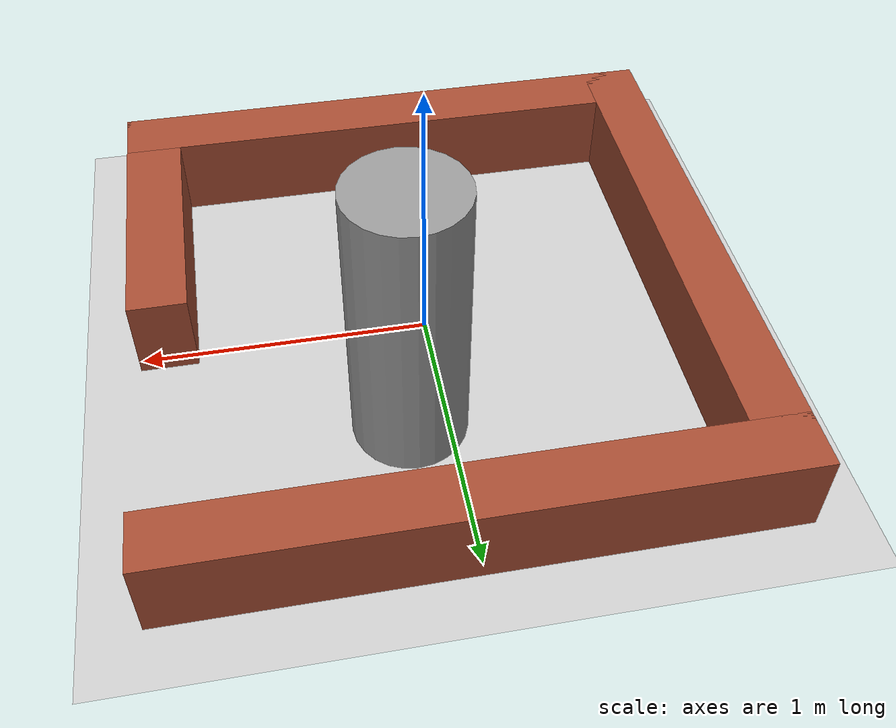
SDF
<sdf version="1.6">
 <world name="default">
  <light name="sun" type="directional">
   <pose>0 0 10 0 -0 0</pose>
   <diffuse>0.8 0.8 0.8 1</diffuse>
   <specular>0.2 0.2 0.2 1</specular>
   <attenuation>
    <range>1000</range>
    <constant>0.9</constant>
    <linear>0.01</linear>
    <quadratic>0.001</quadratic>
   </attenuation>
   <direction>-0.5 0.1 -0.9</direction>
  </light>
  <model name="ground_plane">
   <static>1</static>
   <link name="link">
    <collision name="collision">
     <geometry><plane><normal>0 0 1</normal><size>100 100</size></plane></geometry>
     <surface>
      <contact><collide_bitmask>65535</collide_bitmask></contact>
      <friction><ode><mu>100</mu><mu2>50</mu2></ode></friction>
     </surface>
    </collision>
    <visual name="visual">
     <cast_shadows>0</cast_shadows>
     <geometry><plane><normal>0 0 1</normal><size>100 100</size></plane></geometry>
     <material>
      <script><uri>file://media/materials/scripts/gazebo.material</uri><name>Gazebo/Grey</name></script>
     </material>
    </visual>
   </link>
  </model>
  <gravity>0 0 -9.8</gravity>
  <magnetic_field>6e-06 2.3e-05 -4.2e-05</magnetic_field>
  <atmosphere type="adiabatic"/>
  <physics name="default_physics" default="0" type="ode">
   <max_step_size>0.001</max_step_size>
   <real_time_factor>1</real_time_factor>
   <real_time_update_rate>1000</real_time_update_rate>
  </physics>
  <scene><ambient>0.4 0.4 0.4 1</ambient><background>0.7 0.7 0.7 1</background><shadows>1</shadows></scene>
  <audio><device>default</device></audio>
  <spherical_coordinates>
   <surface_model>EARTH_WGS84</surface_model>
   <latitude_deg>0</latitude_deg>
   <longitude_deg>0</longitude_deg>
   <elevation>0</elevation>
   <heading_deg>0</heading_deg>
  </spherical_coordinates>
  <model name="maze1">
   <pose>-0.017721 0.017165 0 0 -0 0</pose>
   <link name="Wall_0">
    <collision name="Wall_0_Collision">
     <geometry><box><size>2.05 0.2 0.3</size></box></geometry>
     <pose>0 0 0.15 0 -0 0</pose>
    </collision>
    <visual name="Wall_0_Visual">
     <pose>0 0 0.15 0 -0 0</pose>
     <geometry><box><size>2.05 0.2 0.3</size></box></geometry>
     <material>
      <script><uri>file://media/materials/scripts/gazebo.material</uri><name>Gazebo/Bricks</name></script>
      <ambient>1 1 1 1</ambient>
     </material>
     <meta><layer>0</layer></meta>
    </visual>
    <pose>0 0.925 0 0 -0 3.14159</pose>
   </link>
   <link name="Wall_1">
    <collision name="Wall_1_Collision">
     <geometry><box><size>2.05 0.2 0.3</size></box></geometry>
     <pose>0 0 0.15 0 -0 0</pose>
    </collision>
    <visual name="Wall_1_Visual">
     <pose>0 0 0.15 0 -0 0</pose>
     <geometry><box><size>2.05 0.2 0.3</size></box></geometry>
     <material>
      <script><uri>file://media/materials/scripts/gazebo.material</uri><name>Gazebo/Bricks</name></script>
      <ambient>1 1 1 1</ambient>
     </material>
     <meta><layer>0</layer></meta>
    </visual>
    <pose>-0.925 0 0 0 -0 -1.5708</pose>
   </link>
   <link name="Wall_2">
    <collision name="Wall_2_Collision">
     <geometry><box><size>2.05 0.2 0.3</size></box></geometry>
     <pose>0 0 0.15 0 -0 0</pose>
    </collision>
    <visual name="Wall_2_Visual">
     <pose>0 0 0.15 0 -0 0</pose>
     <geometry><box><size>2.05 0.2 0.3</size></box></geometry>
     <material>
      <script><uri>file://media/materials/scripts/gazebo.material</uri><name>Gazebo/Bricks</name></script>
      <ambient>1 1 1 1</ambient>
     </material>
     <meta><layer>0</layer></meta>
    </visual>
    <pose>0 -0.925 0 0 -0 0</pose>
   </link>
   <link name="Wall_3">
    <collision name="Wall_3_Collision">
     <geometry><box><size>1.05 0.2 0.3</size></box></geometry>
     <pose>0 0 0.15 0 -0 0</pose>
    </collision>
    <visual name="Wall_3_Visual">
     <pose>0 0 0.15 0 -0 0</pose>
     <geometry><box><size>1.05 0.2 0.3</size></box></geometry>
     <material>
      <script><uri>file://media/materials/scripts/gazebo.material</uri><name>Gazebo/Bricks</name></script>
      <ambient>1 1 1 1</ambient>
     </material>
     <meta><layer>0</layer></meta>
    </visual>
    <pose>0.925 -0.5 0 0 -0 1.5708</pose>
   </link>
   <static>1</static>
  </model>
  <model name="unit_cylinder">
   <pose>0.125816 0.428244 0.499996 0 -0 0</pose>
   <link name="link">
    <inertial>
     <mass>1</mass>
     <inertia><ixx>0.145833</ixx><ixy>0</ixy><ixz>0</ixz><iyy>0.145833</iyy><iyz>0</iyz><izz>0.125</izz></inertia>
    </inertial>
    <collision name="collision">
     <geometry><cylinder><radius>0.192881</radius><length>1</length></cylinder></geometry>
    </collision>
    <visual name="visual">
     <geometry><cylinder><radius>0.192881</radius><length>1</length></cylinder></geometry>
     <material>
      <script><name>Gazebo/Grey</name><uri>file://media/materials/scripts/gazebo.material</uri></script>
     </material>
    </visual>
   </link>
  </model>
 </world>
</sdf>
